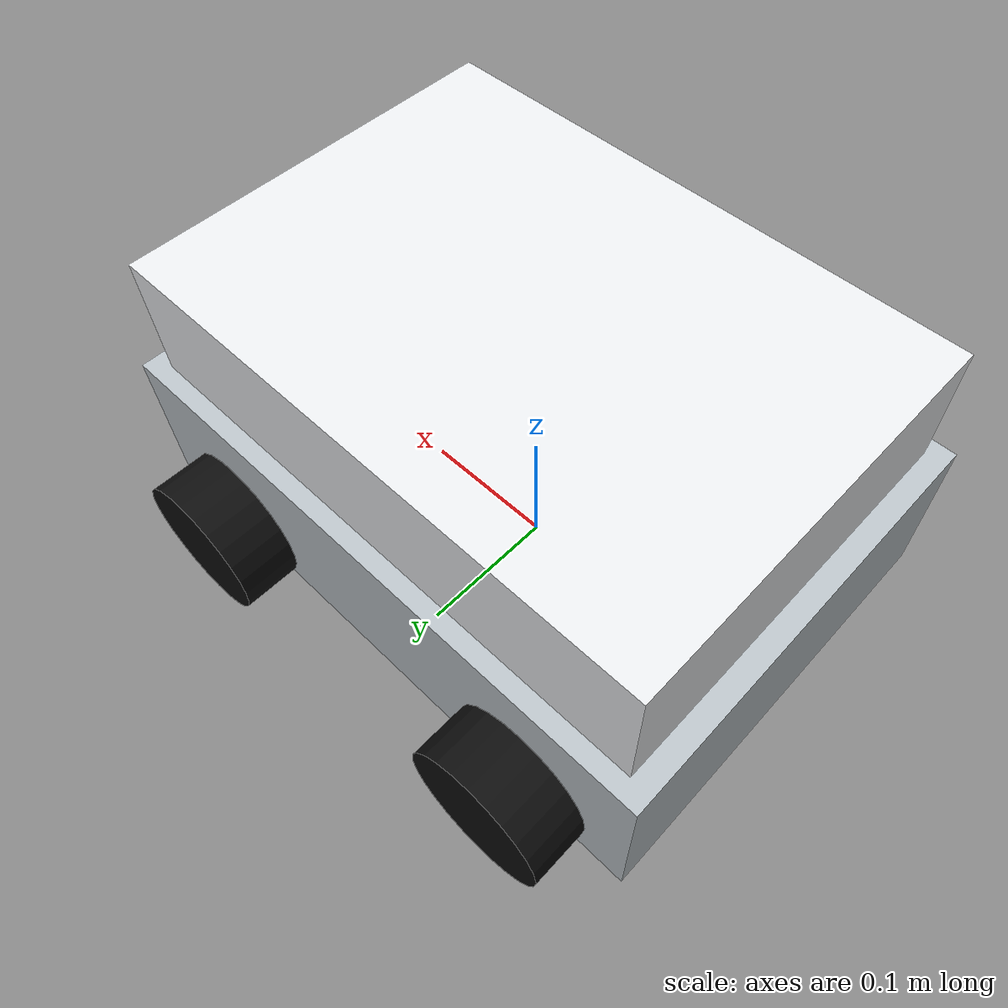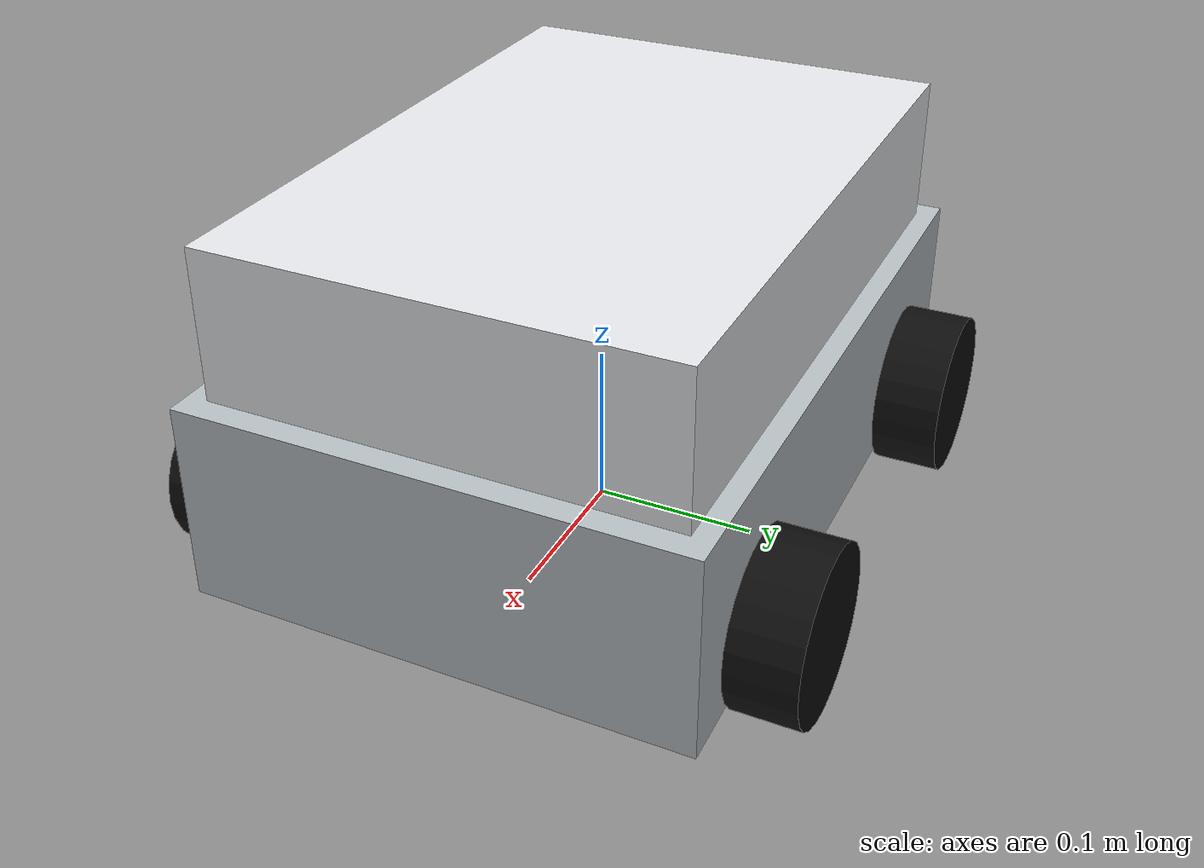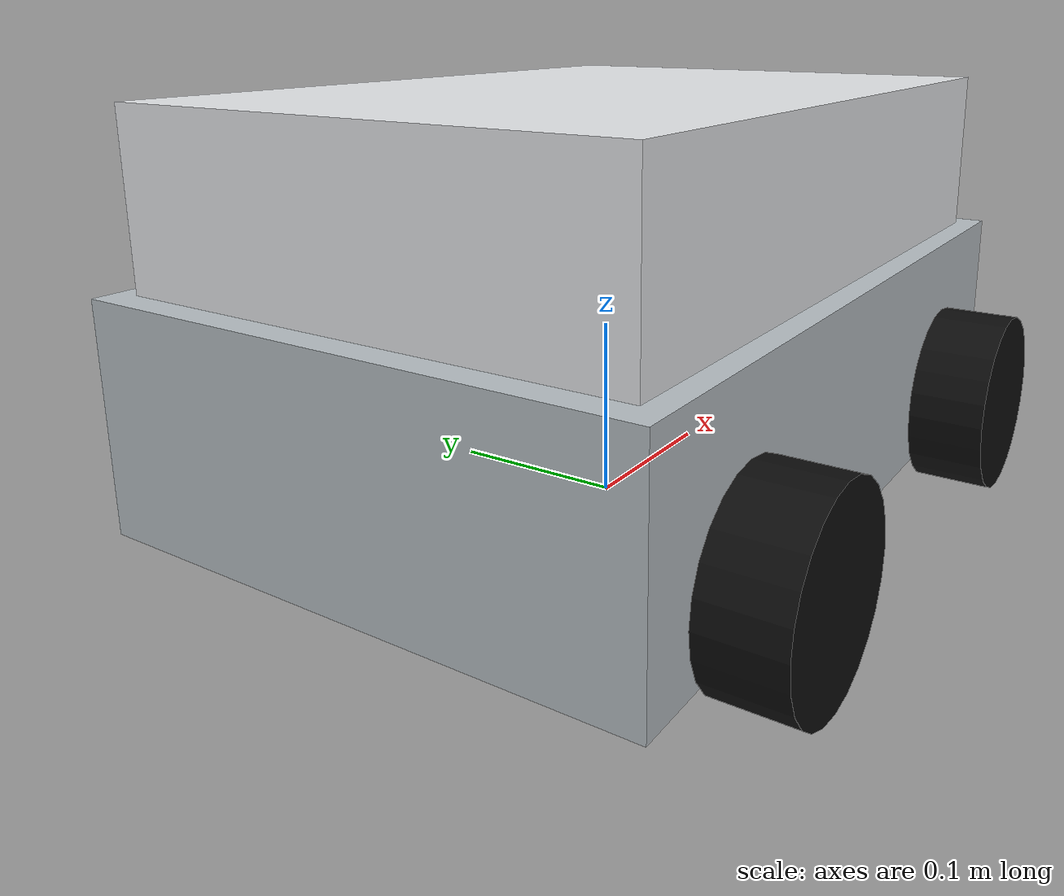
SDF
<?xml version="1.0"?>
<sdf version="1.10"><model name="openpatrol">
  <!-- Rover One Rev A geometry: 420 x 300 mm structural deck, 100 mm wheels. -->
  <pose>0 0 0.08 0 0 0</pose>
  <frame name="lidar_frame" attached_to="base_link"><pose>0.05 0 0.17 0 0 0</pose></frame>
  <link name="base_link">
    <inertial><mass>10.5</mass><inertia><ixx>0.14</ixx><iyy>0.22</iyy><izz>0.31</izz></inertia></inertial>
    <collision name="body_collision"><geometry><box><size>0.42 0.30 0.12</size></box></geometry></collision>
    <visual name="body_visual"><geometry><box><size>0.42 0.30 0.12</size></box></geometry><material><diffuse>0.72 0.75 0.77 1</diffuse></material></visual>
    <visual name="cover_visual"><pose>0 0 0.105 0 0 0</pose><geometry><box><size>0.39 0.275 0.09</size></box></geometry><material><diffuse>0.90 0.91 0.92 1</diffuse></material></visual>
    <sensor name="imu" type="imu"><always_on>true</always_on><update_rate>100</update_rate><topic>/imu</topic><gz_frame_id>base_link</gz_frame_id></sensor>
    <sensor name="lidar" type="gpu_lidar"><pose relative_to="lidar_frame">0 0 0 0 0 0</pose><always_on>true</always_on><visualize>true</visualize><update_rate>10</update_rate><topic>/scan</topic><gz_frame_id>base_link</gz_frame_id><ray><scan><horizontal><samples>360</samples><resolution>1</resolution><min_angle>-3.14159</min_angle><max_angle>3.14159</max_angle></horizontal><vertical><samples>1</samples><resolution>1</resolution><min_angle>0</min_angle><max_angle>0</max_angle></vertical></scan><range><min>0.12</min><max>12</max><resolution>0.01</resolution></range><noise><type>gaussian</type><mean>0</mean><stddev>0.01</stddev></noise></ray></sensor>
    <sensor name="front_camera" type="camera"><pose>0.22 0 0.10 0 0 0</pose><always_on>true</always_on><update_rate>15</update_rate><topic>/camera/image_raw</topic><camera><horizontal_fov>1.4</horizontal_fov><image><width>640</width><height>360</height><format>R8G8B8</format></image><clip><near>0.1</near><far>30</far></clip><noise><type>gaussian</type><mean>0</mean><stddev>0.007</stddev></noise></camera></sensor>
  </link>
  <link name="left_front_wheel"><pose>0.13 0.17 -0.03 1.5708 0 0</pose><inertial><mass>0.35</mass><inertia><ixx>.0005</ixx><iyy>.0005</iyy><izz>.0005</izz></inertia></inertial><collision name="collision"><geometry><cylinder><radius>.05</radius><length>.04</length></cylinder></geometry><surface><friction><ode><mu>1.0</mu><mu2>1.0</mu2></ode></friction></surface></collision><visual name="visual"><geometry><cylinder><radius>.05</radius><length>.04</length></cylinder></geometry><material><diffuse>.05 .05 .05 1</diffuse></material></visual></link>
  <link name="left_rear_wheel"><pose>-0.13 0.17 -0.03 1.5708 0 0</pose><inertial><mass>0.35</mass><inertia><ixx>.0005</ixx><iyy>.0005</iyy><izz>.0005</izz></inertia></inertial><collision name="collision"><geometry><cylinder><radius>.05</radius><length>.04</length></cylinder></geometry><surface><friction><ode><mu>1.0</mu><mu2>1.0</mu2></ode></friction></surface></collision><visual name="visual"><geometry><cylinder><radius>.05</radius><length>.04</length></cylinder></geometry><material><diffuse>.05 .05 .05 1</diffuse></material></visual></link>
  <link name="right_front_wheel"><pose>0.13 -0.17 -0.03 1.5708 0 0</pose><inertial><mass>0.35</mass><inertia><ixx>.0005</ixx><iyy>.0005</iyy><izz>.0005</izz></inertia></inertial><collision name="collision"><geometry><cylinder><radius>.05</radius><length>.04</length></cylinder></geometry><surface><friction><ode><mu>1.0</mu><mu2>1.0</mu2></ode></friction></surface></collision><visual name="visual"><geometry><cylinder><radius>.05</radius><length>.04</length></cylinder></geometry><material><diffuse>.05 .05 .05 1</diffuse></material></visual></link>
  <link name="right_rear_wheel"><pose>-0.13 -0.17 -0.03 1.5708 0 0</pose><inertial><mass>0.35</mass><inertia><ixx>.0005</ixx><iyy>.0005</iyy><izz>.0005</izz></inertia></inertial><collision name="collision"><geometry><cylinder><radius>.05</radius><length>.04</length></cylinder></geometry><surface><friction><ode><mu>1.0</mu><mu2>1.0</mu2></ode></friction></surface></collision><visual name="visual"><geometry><cylinder><radius>.05</radius><length>.04</length></cylinder></geometry><material><diffuse>.05 .05 .05 1</diffuse></material></visual></link>
  <joint name="left_front_joint" type="revolute"><parent>base_link</parent><child>left_front_wheel</child><axis><xyz>0 1 0</xyz></axis></joint>
  <joint name="left_rear_joint" type="revolute"><parent>base_link</parent><child>left_rear_wheel</child><axis><xyz>0 1 0</xyz></axis></joint>
  <joint name="right_front_joint" type="revolute"><parent>base_link</parent><child>right_front_wheel</child><axis><xyz>0 1 0</xyz></axis></joint>
  <joint name="right_rear_joint" type="revolute"><parent>base_link</parent><child>right_rear_wheel</child><axis><xyz>0 1 0</xyz></axis></joint>
  <plugin filename="gz-sim-diff-drive-system" name="gz::sim::systems::DiffDrive">
    <left_joint>left_front_joint</left_joint><left_joint>left_rear_joint</left_joint>
    <right_joint>right_front_joint</right_joint><right_joint>right_rear_joint</right_joint>
    <wheel_separation>0.34</wheel_separation><wheel_radius>0.05</wheel_radius>
    <topic>/cmd_vel_safe</topic><odom_topic>/odom</odom_topic><tf_topic>/tf</tf_topic><frame_id>odom</frame_id><child_frame_id>base_link</child_frame_id>
    <max_linear_velocity>0.45</max_linear_velocity><max_angular_velocity>1.0</max_angular_velocity>
  </plugin>
</model></sdf>
